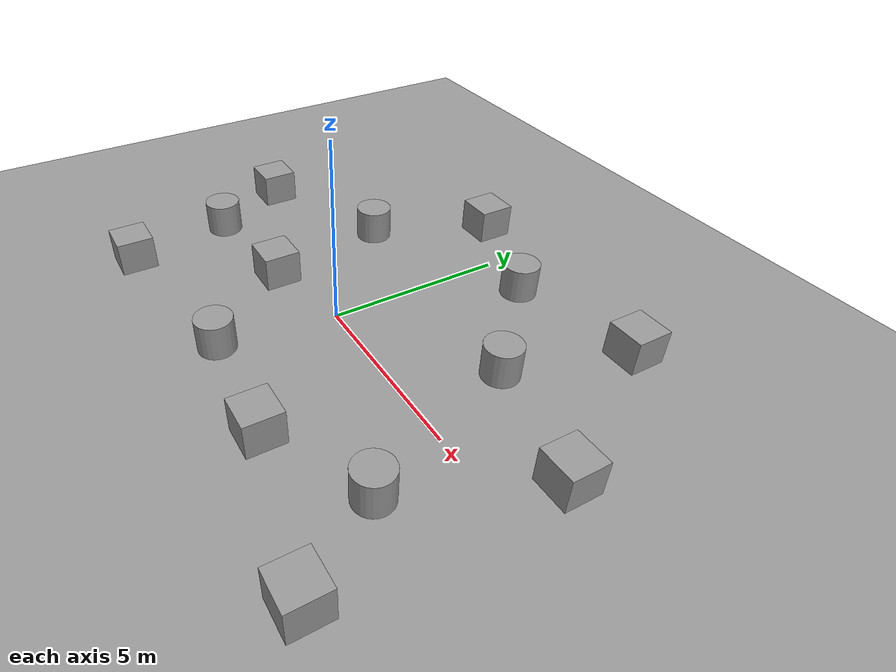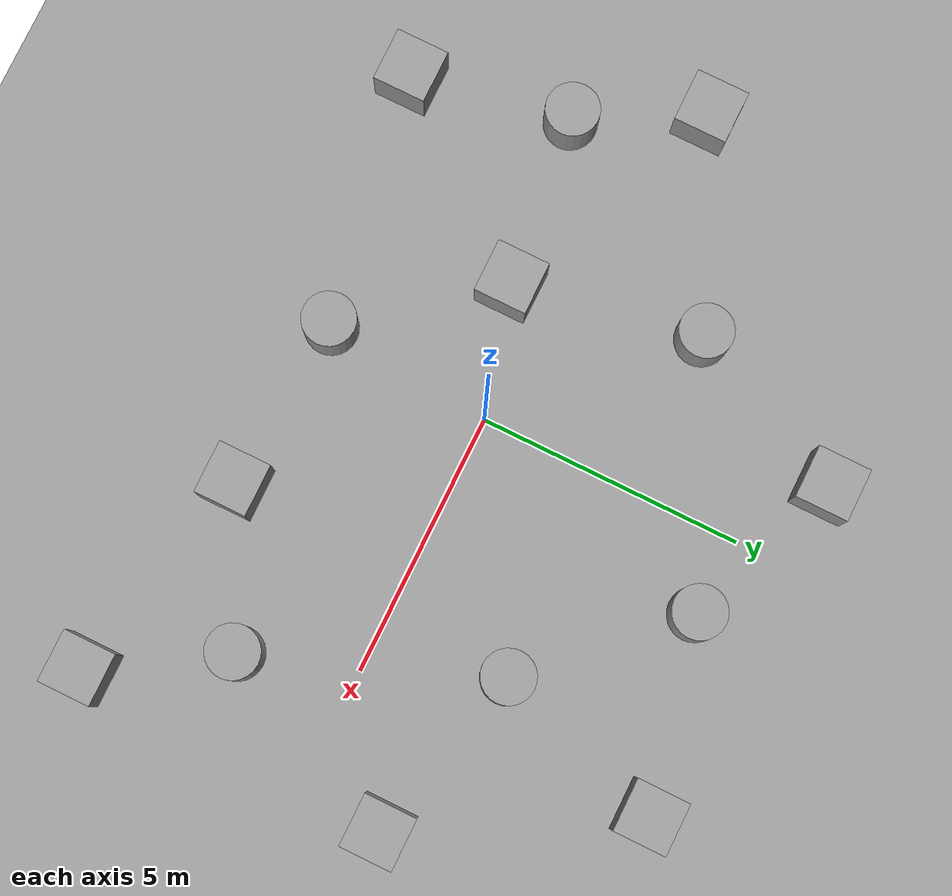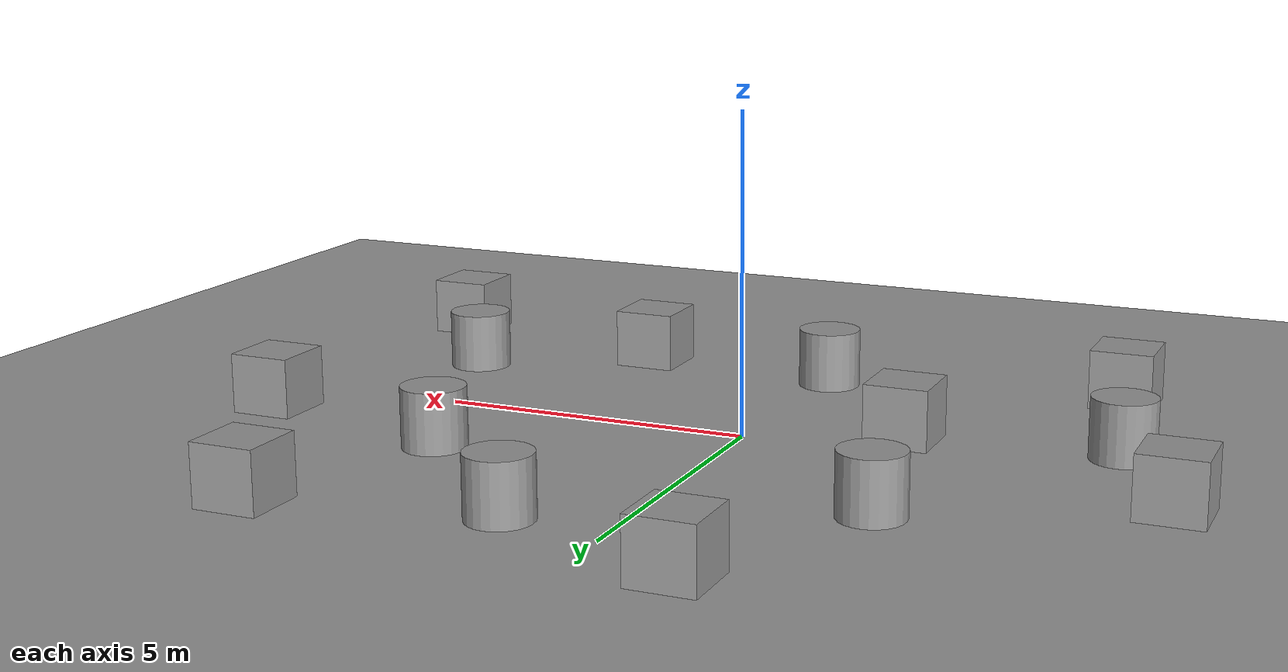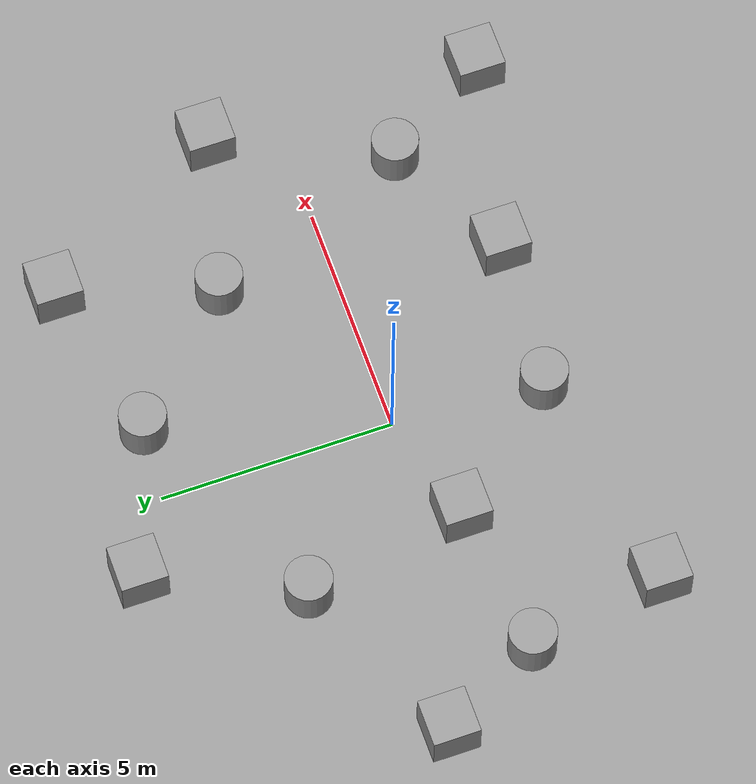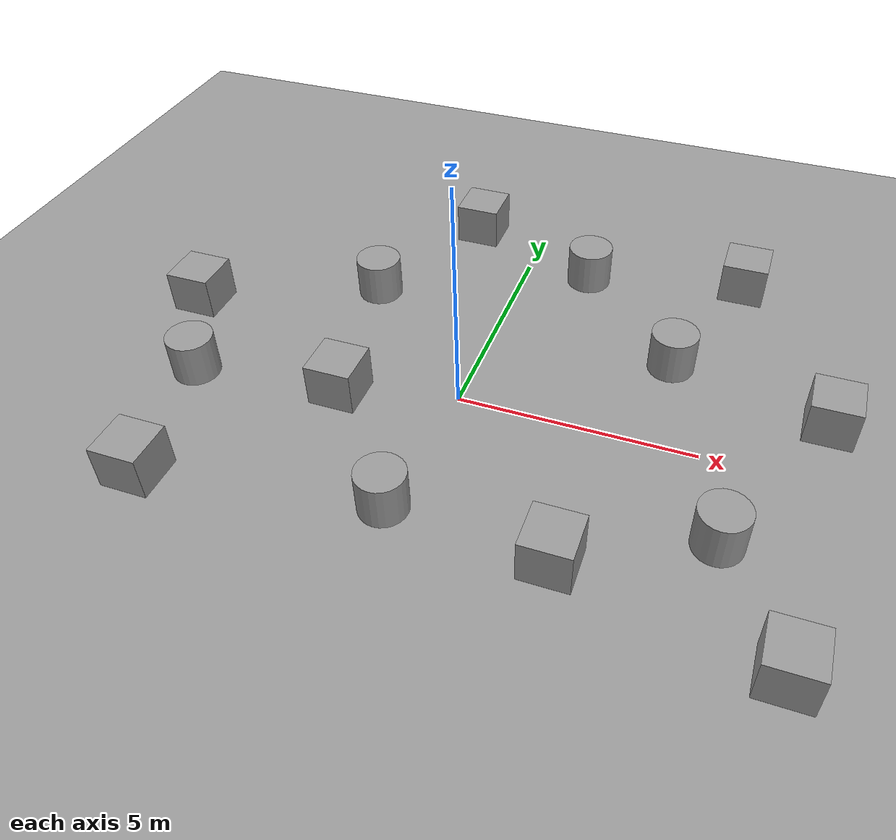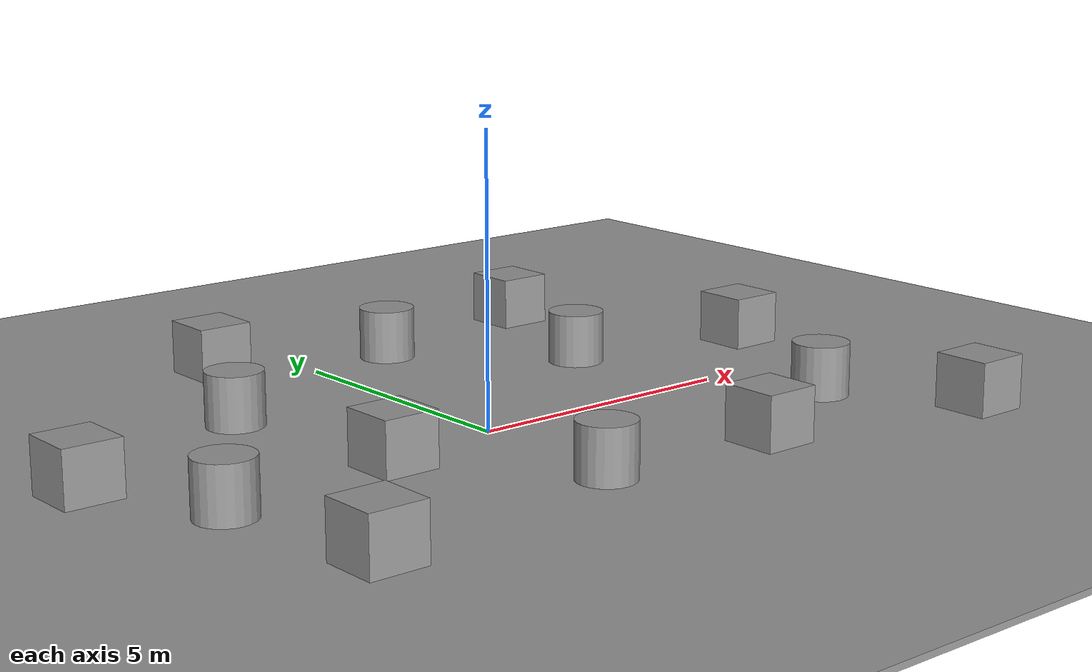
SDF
<sdf version="1.7">
 <world name="default">
  <light name="sun" type="directional">
   <pose>0 0 10 0 -0 0</pose>
   <diffuse>0.8 0.8 0.8 1</diffuse>
   <specular>0.2 0.2 0.2 1</specular>
   <attenuation>
    <range>1000</range>
    <constant>0.9</constant>
    <linear>0.01</linear>
    <quadratic>0.001</quadratic>
   </attenuation>
   <direction>-0.5 0.1 -0.9</direction>
   <spot><inner_angle>0</inner_angle><outer_angle>0</outer_angle><falloff>0</falloff></spot>
  </light>
  <model name="ground_plane">
   <static>1</static>
   <link name="link">
    <collision name="collision">
     <geometry><plane><normal>0 0 1</normal><size>100 100</size></plane></geometry>
     <surface><friction><ode><mu>100</mu><mu2>50</mu2></ode></friction></surface>
    </collision>
    <visual name="visual">
     <cast_shadows>0</cast_shadows>
     <geometry><plane><normal>0 0 1</normal><size>100 100</size></plane></geometry>
     <material>
      <script><uri>file://media/materials/scripts/gazebo.material</uri><name>Gazebo/Grey</name></script>
     </material>
    </visual>
   </link>
  </model>
  <gravity>0 0 -9.8</gravity>
  <magnetic_field>6e-06 2.3e-05 -4.2e-05</magnetic_field>
  <atmosphere type="adiabatic"/>
  <physics type="ode">
   <max_step_size>0.001</max_step_size>
   <real_time_factor>1</real_time_factor>
   <real_time_update_rate>1000</real_time_update_rate>
  </physics>
  <scene><ambient>0.4 0.4 0.4 1</ambient><background>0.7 0.7 0.7 1</background><shadows>1</shadows></scene>
  <audio><device>default</device></audio>
  <spherical_coordinates>
   <surface_model>EARTH_WGS84</surface_model>
   <latitude_deg>0</latitude_deg>
   <longitude_deg>0</longitude_deg>
   <elevation>0</elevation>
   <heading_deg>0</heading_deg>
  </spherical_coordinates>
  <model name="ground_plane_0">
   <static>1</static>
   <link name="link">
    <collision name="collision">
     <geometry><plane><normal>0 0 1</normal><size>100 100</size></plane></geometry>
     <surface><friction><ode><mu>100</mu><mu2>50</mu2></ode></friction></surface>
    </collision>
    <visual name="visual">
     <cast_shadows>0</cast_shadows>
     <geometry><plane><normal>0 0 1</normal><size>100 100</size></plane></geometry>
     <material>
      <script><uri>file://media/materials/scripts/gazebo.material</uri><name>Gazebo/Grey</name></script>
     </material>
    </visual>
   </link>
   <pose>0.157724 0.106367 0 0 -0 0</pose>
  </model>
  <model name="unit_box">
   <pose>-2.3758 -0.642493 0.499995 -1e-05 -0 0</pose>
   <link name="link">
    <inertial>
     <mass>1</mass>
     <inertia>
      <ixx>0.166667</ixx>
      <ixy>0</ixy>
      <ixz>0</ixz>
      <iyy>0.166667</iyy>
      <iyz>0</iyz>
      <izz>0.166667</izz>
     </inertia>
    </inertial>
    <collision name="collision"><geometry><box><size>1 1 1</size></box></geometry></collision>
    <visual name="visual">
     <geometry><box><size>1 1 1</size></box></geometry>
     <material>
      <script><name>Gazebo/Grey</name><uri>file://media/materials/scripts/gazebo.material</uri></script>
     </material>
    </visual>
   </link>
  </model>
  <model name="unit_box_clone">
   <pose>2.99812 -3.44598 0.499996 9e-06 -0 0</pose>
   <link name="link">
    <inertial>
     <mass>1</mass>
     <inertia>
      <ixx>0.166667</ixx>
      <ixy>0</ixy>
      <ixz>0</ixz>
      <iyy>0.166667</iyy>
      <iyz>0</iyz>
      <izz>0.166667</izz>
     </inertia>
    </inertial>
    <collision name="collision"><geometry><box><size>1 1 1</size></box></geometry></collision>
    <visual name="visual">
     <geometry><box><size>1 1 1</size></box></geometry>
     <material>
      <script><name>Gazebo/Grey</name><uri>file://media/materials/scripts/gazebo.material</uri></script>
     </material>
    </visual>
   </link>
  </model>
  <model name="unit_box_clone_0">
   <pose>7.32401 1.54566 0.499996 9e-06 -0 0</pose>
   <link name="link">
    <inertial>
     <mass>1</mass>
     <inertia>
      <ixx>0.166667</ixx>
      <ixy>0</ixy>
      <ixz>0</ixz>
      <iyy>0.166667</iyy>
      <iyz>0</iyz>
      <izz>0.166667</izz>
     </inertia>
    </inertial>
    <collision name="collision"><geometry><box><size>1 1 1</size></box></geometry></collision>
    <visual name="visual">
     <geometry><box><size>1 1 1</size></box></geometry>
     <material>
      <script><name>Gazebo/Grey</name><uri>file://media/materials/scripts/gazebo.material</uri></script>
     </material>
    </visual>
   </link>
  </model>
  <model name="unit_box_clone_2">
   <pose>5.03407 5.63222 0.499996 9e-06 -0 0</pose>
   <link name="link">
    <inertial>
     <mass>1</mass>
     <inertia>
      <ixx>0.166667</ixx>
      <ixy>0</ixy>
      <ixz>0</ixz>
      <iyy>0.166667</iyy>
      <iyz>0</iyz>
      <izz>0.166667</izz>
     </inertia>
    </inertial>
    <collision name="collision"><geometry><box><size>1 1 1</size></box></geometry></collision>
    <visual name="visual">
     <geometry><box><size>1 1 1</size></box></geometry>
     <material>
      <script><name>Gazebo/Grey</name><uri>file://media/materials/scripts/gazebo.material</uri></script>
     </material>
    </visual>
   </link>
  </model>
  <model name="unit_box_clone_3">
   <pose>-6.74032 1.19714 0.499996 -9e-06 0 0</pose>
   <link name="link">
    <inertial>
     <mass>1</mass>
     <inertia>
      <ixx>0.166667</ixx>
      <ixy>0</ixy>
      <ixz>0</ixz>
      <iyy>0.166667</iyy>
      <iyz>0</iyz>
      <izz>0.166667</izz>
     </inertia>
    </inertial>
    <collision name="collision"><geometry><box><size>1 1 1</size></box></geometry></collision>
    <visual name="visual">
     <geometry><box><size>1 1 1</size></box></geometry>
     <material>
      <script><name>Gazebo/Grey</name><uri>file://media/materials/scripts/gazebo.material</uri></script>
     </material>
    </visual>
   </link>
  </model>
  <model name="unit_box_clone_4">
   <pose>7.11069 -4.36502 0.499996 -9e-06 0 0</pose>
   <link name="link">
    <inertial>
     <mass>1</mass>
     <inertia>
      <ixx>0.166667</ixx>
      <ixy>0</ixy>
      <ixz>0</ixz>
      <iyy>0.166667</iyy>
      <iyz>0</iyz>
      <izz>0.166667</izz>
     </inertia>
    </inertial>
    <collision name="collision"><geometry><box><size>1 1 1</size></box></geometry></collision>
    <visual name="visual">
     <geometry><box><size>1 1 1</size></box></geometry>
     <material>
      <script><name>Gazebo/Grey</name><uri>file://media/materials/scripts/gazebo.material</uri></script>
     </material>
    </visual>
   </link>
  </model>
  <model name="unit_box_clone_5">
   <pose>-5.0429 -3.95447 0.499996 -9e-06 0 0</pose>
   <link name="link">
    <inertial>
     <mass>1</mass>
     <inertia>
      <ixx>0.166667</ixx>
      <ixy>0</ixy>
      <ixz>0</ixz>
      <iyy>0.166667</iyy>
      <iyz>0</iyz>
      <izz>0.166667</izz>
     </inertia>
    </inertial>
    <collision name="collision"><geometry><box><size>1 1 1</size></box></geometry></collision>
    <visual name="visual">
     <geometry><box><size>1 1 1</size></box></geometry>
     <material>
      <script><name>Gazebo/Grey</name><uri>file://media/materials/scripts/gazebo.material</uri></script>
     </material>
    </visual>
   </link>
  </model>
  <model name="unit_box_clone_6">
   <pose>-1.54995 6.00001 0.499996 -9e-06 0 0</pose>
   <link name="link">
    <inertial>
     <mass>1</mass>
     <inertia>
      <ixx>0.166667</ixx>
      <ixy>0</ixy>
      <ixz>0</ixz>
      <iyy>0.166667</iyy>
      <iyz>0</iyz>
      <izz>0.166667</izz>
     </inertia>
    </inertial>
    <collision name="collision"><geometry><box><size>1 1 1</size></box></geometry></collision>
    <visual name="visual">
     <geometry><box><size>1 1 1</size></box></geometry>
     <material>
      <script><name>Gazebo/Grey</name><uri>file://media/materials/scripts/gazebo.material</uri></script>
     </material>
    </visual>
   </link>
  </model>
  <model name="unit_cylinder">
   <pose>-3.02059 2.86327 0.499993 4e-06 3e-06 -0</pose>
   <link name="link">
    <inertial>
     <mass>1</mass>
     <inertia><ixx>0.145833</ixx><ixy>0</ixy><ixz>0</ixz><iyy>0.145833</iyy><iyz>0</iyz><izz>0.125</izz></inertia>
    </inertial>
    <collision name="collision">
     <geometry><cylinder><radius>0.5</radius><length>1</length></cylinder></geometry>
    </collision>
    <visual name="visual">
     <geometry><cylinder><radius>0.5</radius><length>1</length></cylinder></geometry>
     <material>
      <script><name>Gazebo/Grey</name><uri>file://media/materials/scripts/gazebo.material</uri></script>
     </material>
    </visual>
   </link>
  </model>
  <model name="unit_cylinder_clone">
   <pose>3.96596 2.38924 0.499997 -4e-06 -3e-06 -0</pose>
   <link name="link">
    <inertial>
     <mass>1</mass>
     <inertia><ixx>0.145833</ixx><ixy>0</ixy><ixz>0</ixz><iyy>0.145833</iyy><iyz>0</iyz><izz>0.125</izz></inertia>
    </inertial>
    <collision name="collision">
     <geometry><cylinder><radius>0.5</radius><length>1</length></cylinder></geometry>
    </collision>
    <visual name="visual">
     <geometry><cylinder><radius>0.5</radius><length>1</length></cylinder></geometry>
     <material>
      <script><name>Gazebo/Grey</name><uri>file://media/materials/scripts/gazebo.material</uri></script>
     </material>
    </visual>
   </link>
  </model>
  <model name="unit_cylinder_clone_0">
   <pose>5.6788 -2.07629 0.499993 4e-06 3e-06 -0</pose>
   <link name="link">
    <inertial>
     <mass>1</mass>
     <inertia><ixx>0.145833</ixx><ixy>0</ixy><ixz>0</ixz><iyy>0.145833</iyy><iyz>0</iyz><izz>0.125</izz></inertia>
    </inertial>
    <collision name="collision">
     <geometry><cylinder><radius>0.5</radius><length>1</length></cylinder></geometry>
    </collision>
    <visual name="visual">
     <geometry><cylinder><radius>0.5</radius><length>1</length></cylinder></geometry>
     <material>
      <script><name>Gazebo/Grey</name><uri>file://media/materials/scripts/gazebo.material</uri></script>
     </material>
    </visual>
   </link>
  </model>
  <model name="unit_cylinder_clone_1">
   <pose>-0.275166 -3.20293 0.499997 -4e-06 -4e-06 -0</pose>
   <link name="link">
    <inertial>
     <mass>1</mass>
     <inertia><ixx>0.145833</ixx><ixy>0</ixy><ixz>0</ixz><iyy>0.145833</iyy><iyz>0</iyz><izz>0.125</izz></inertia>
    </inertial>
    <collision name="collision">
     <geometry><cylinder><radius>0.5</radius><length>1</length></cylinder></geometry>
    </collision>
    <visual name="visual">
     <geometry><cylinder><radius>0.5</radius><length>1</length></cylinder></geometry>
     <material>
      <script><name>Gazebo/Grey</name><uri>file://media/materials/scripts/gazebo.material</uri></script>
     </material>
    </visual>
   </link>
  </model>
  <model name="unit_cylinder_clone_2">
   <pose>-5.59266 -1 0.499993 4e-06 3e-06 -0</pose>
   <link name="link">
    <inertial>
     <mass>1</mass>
     <inertia><ixx>0.145833</ixx><ixy>0</ixy><ixz>0</ixz><iyy>0.145833</iyy><iyz>0</iyz><izz>0.125</izz></inertia>
    </inertial>
    <collision name="collision">
     <geometry><cylinder><radius>0.5</radius><length>1</length></cylinder></geometry>
    </collision>
    <visual name="visual">
     <geometry><cylinder><radius>0.5</radius><length>1</length></cylinder></geometry>
     <material>
      <script><name>Gazebo/Grey</name><uri>file://media/materials/scripts/gazebo.material</uri></script>
     </material>
    </visual>
   </link>
  </model>
  <model name="unit_cylinder_clone_3">
   <pose>1.5017 4.87261 0.499993 4e-06 4e-06 -0</pose>
   <link name="link">
    <inertial>
     <mass>1</mass>
     <inertia><ixx>0.145833</ixx><ixy>0</ixy><ixz>0</ixz><iyy>0.145833</iyy><iyz>0</iyz><izz>0.125</izz></inertia>
    </inertial>
    <collision name="collision">
     <geometry><cylinder><radius>0.5</radius><length>1</length></cylinder></geometry>
    </collision>
    <visual name="visual">
     <geometry><cylinder><radius>0.5</radius><length>1</length></cylinder></geometry>
     <material>
      <script><name>Gazebo/Grey</name><uri>file://media/materials/scripts/gazebo.material</uri></script>
     </material>
    </visual>
   </link>
  </model>
 </world>
</sdf>
